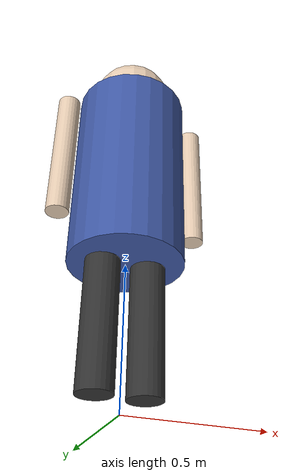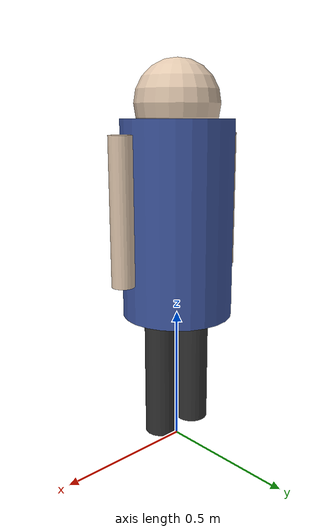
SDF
<?xml version="1.0"?>
<sdf version="1.9">
  <model name="person">
    <static>true</static>
    <!-- Body/torso -->
    <link name="torso">
      <visual name="body">
        <pose>0 0 0.85 0 0 0</pose>
        <geometry><cylinder><radius>0.2</radius><length>0.7</length></cylinder></geometry>
        <material>
          <ambient>0.2 0.3 0.6 1</ambient>
          <diffuse>0.25 0.35 0.65 1</diffuse>
        </material>
      </visual>
      <!-- Head -->
      <visual name="head">
        <pose>0 0 1.25 0 0 0</pose>
        <geometry><sphere><radius>0.15</radius></sphere></geometry>
        <material>
          <ambient>0.85 0.75 0.65 1</ambient>
          <diffuse>0.9 0.8 0.7 1</diffuse>
        </material>
      </visual>
      <!-- Left leg -->
      <visual name="leg_l">
        <pose>-0.08 0 0.4 0 0 0</pose>
        <geometry><cylinder><radius>0.06</radius><length>0.7</length></cylinder></geometry>
        <material>
          <ambient>0.15 0.15 0.15 1</ambient>
          <diffuse>0.2 0.2 0.2 1</diffuse>
        </material>
      </visual>
      <!-- Right leg -->
      <visual name="leg_r">
        <pose>0.08 0 0.4 0 0 0</pose>
        <geometry><cylinder><radius>0.06</radius><length>0.7</length></cylinder></geometry>
        <material>
          <ambient>0.15 0.15 0.15 1</ambient>
          <diffuse>0.2 0.2 0.2 1</diffuse>
        </material>
      </visual>
      <!-- Left arm -->
      <visual name="arm_l">
        <pose>-0.25 0 0.9 0 0 0.3</pose>
        <geometry><cylinder><radius>0.04</radius><length>0.5</length></cylinder></geometry>
        <material>
          <ambient>0.85 0.75 0.65 1</ambient>
          <diffuse>0.9 0.8 0.7 1</diffuse>
        </material>
      </visual>
      <!-- Right arm -->
      <visual name="arm_r">
        <pose>0.25 0 0.9 0 0 -0.3</pose>
        <geometry><cylinder><radius>0.04</radius><length>0.5</length></cylinder></geometry>
        <material>
          <ambient>0.85 0.75 0.65 1</ambient>
          <diffuse>0.9 0.8 0.7 1</diffuse>
        </material>
      </visual>
      <collision name="col">
        <pose>0 0 0.85 0 0 0</pose>
        <geometry><cylinder><radius>0.25</radius><length>1.5</length></cylinder></geometry>
      </collision>
    </link>
  </model>
</sdf>
